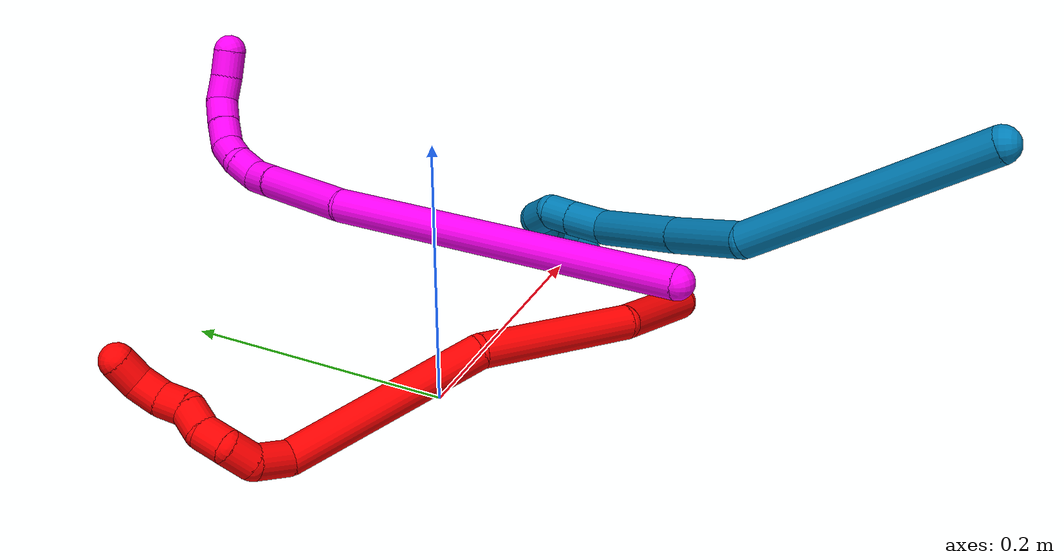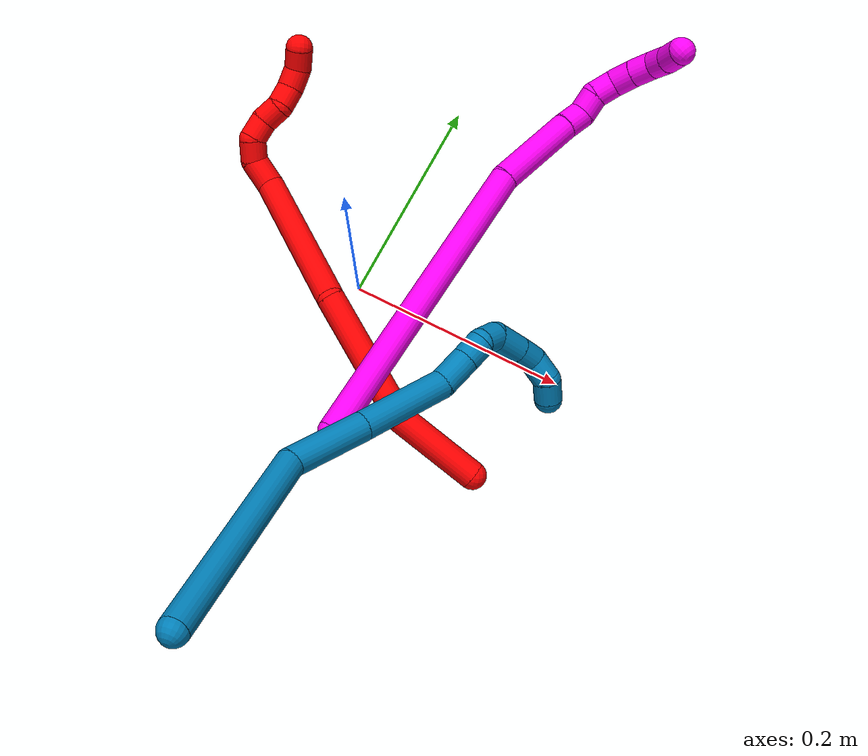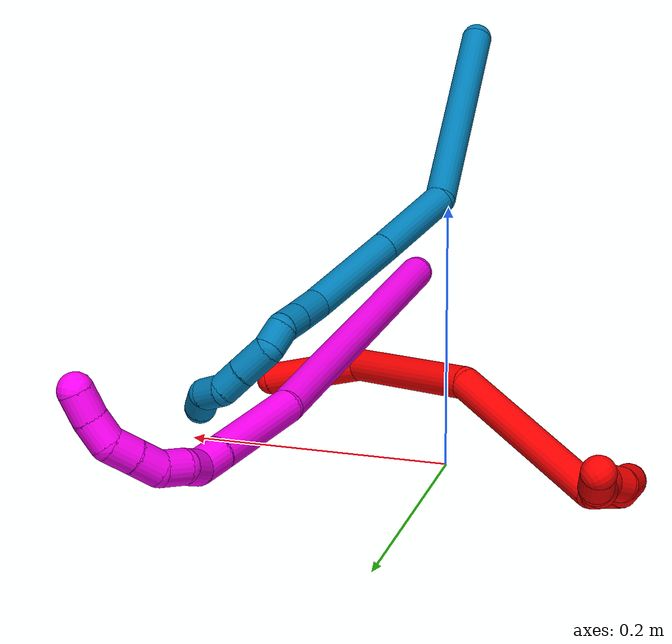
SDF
<sdf version="1.7">
 <world name="default">
  <model name="2">
   <static>0</static>
   <link name="2">
    <collision name="collision-cylinder-e_1_1_4">
     <pose>-0.015344 0.022057 0.030603 -0.624516 -0.386319 0.126118</pose>
     <geometry><cylinder><radius>0.0125</radius><length>0.08145</length></cylinder></geometry>
     <surface>
      <friction><ode><mu>1.16</mu><mu2>1.16</mu2><slip1>0</slip1><slip2>0</slip2></ode></friction>
      <contact><ode><kp>1e+06</kp><kd>1</kd><max_vel>0</max_vel><min_depth>0.001</min_depth></ode></contact>
     </surface>
    </collision>
    <visual name="visual-cylinder-e_1_1_4">
     <pose>-0.015344 0.022057 0.030603 -0.624516 -0.386319 0.126118</pose>
     <geometry><cylinder><radius>0.0125</radius><length>0.08145</length></cylinder></geometry>
     <material><ambient>1 0 0 1</ambient></material>
    </visual>
    <collision name="collision-cylinder-e_2_4_5">
     <pose>-0.060681 0.090892 0.085819 -1.08644 -0.516109 0.316084</pose>
     <geometry><cylinder><radius>0.0125</radius><length>0.121547</length></cylinder></geometry>
     <surface>
      <friction><ode><mu>1.16</mu><mu2>1.16</mu2><slip1>0</slip1><slip2>0</slip2></ode></friction>
      <contact><ode><kp>1e+06</kp><kd>1</kd><max_vel>0</max_vel><min_depth>0.001</min_depth></ode></contact>
     </surface>
    </collision>
    <visual name="visual-cylinder-e_2_4_5">
     <pose>-0.060681 0.090892 0.085819 -1.08644 -0.516109 0.316084</pose>
     <geometry><cylinder><radius>0.0125</radius><length>0.121547</length></cylinder></geometry>
     <material><ambient>1 0 0 1</ambient></material>
    </visual>
    <collision name="collision-cylinder-e_3_5_6">
     <pose>-0.148945 0.181978 0.120838 -1.3401 -0.907715 0.73766</pose>
     <geometry><cylinder><radius>0.0125</radius><length>0.147881</length></cylinder></geometry>
     <surface>
      <friction><ode><mu>1.16</mu><mu2>1.16</mu2><slip1>0</slip1><slip2>0</slip2></ode></friction>
      <contact><ode><kp>1e+06</kp><kd>1</kd><max_vel>0</max_vel><min_depth>0.001</min_depth></ode></contact>
     </surface>
    </collision>
    <visual name="visual-cylinder-e_3_5_6">
     <pose>-0.148945 0.181978 0.120838 -1.3401 -0.907715 0.73766</pose>
     <geometry><cylinder><radius>0.0125</radius><length>0.147881</length></cylinder></geometry>
     <material><ambient>1 0 0 1</ambient></material>
    </visual>
    <collision name="collision-cylinder-e_4_6_7">
     <pose>-0.212338 0.236897 0.138672 -0.960114 -0.376516 0.197748</pose>
     <geometry><cylinder><radius>0.0125</radius><length>0.027855</length></cylinder></geometry>
     <surface>
      <friction><ode><mu>1.16</mu><mu2>1.16</mu2><slip1>0</slip1><slip2>0</slip2></ode></friction>
      <contact><ode><kp>1e+06</kp><kd>1</kd><max_vel>0</max_vel><min_depth>0.001</min_depth></ode></contact>
     </surface>
    </collision>
    <visual name="visual-cylinder-e_4_6_7">
     <pose>-0.212338 0.236897 0.138672 -0.960114 -0.376516 0.197748</pose>
     <geometry><cylinder><radius>0.0125</radius><length>0.027855</length></cylinder></geometry>
     <material><ambient>1 0 0 1</ambient></material>
    </visual>
    <collision name="collision-cylinder-e_5_7_8">
     <pose>-0.215801 0.257533 0.148574 -1.32875 0.159224 -0.124796</pose>
     <geometry><cylinder><radius>0.0125</radius><length>0.020917</length></cylinder></geometry>
     <surface>
      <friction><ode><mu>1.16</mu><mu2>1.16</mu2><slip1>0</slip1><slip2>0</slip2></ode></friction>
      <contact><ode><kp>1e+06</kp><kd>1</kd><max_vel>0</max_vel><min_depth>0.001</min_depth></ode></contact>
     </surface>
    </collision>
    <visual name="visual-cylinder-e_5_7_8">
     <pose>-0.215801 0.257533 0.148574 -1.32875 0.159224 -0.124796</pose>
     <geometry><cylinder><radius>0.0125</radius><length>0.020917</length></cylinder></geometry>
     <material><ambient>1 0 0 1</ambient></material>
    </visual>
    <collision name="collision-cylinder-e_6_8_9">
     <pose>-0.213558 0.27657 0.146514 -2.03696 0.057851 -0.093825</pose>
     <geometry><cylinder><radius>0.0125</radius><length>0.020212</length></cylinder></geometry>
     <surface>
      <friction><ode><mu>1.16</mu><mu2>1.16</mu2><slip1>0</slip1><slip2>0</slip2></ode></friction>
      <contact><ode><kp>1e+06</kp><kd>1</kd><max_vel>0</max_vel><min_depth>0.001</min_depth></ode></contact>
     </surface>
    </collision>
    <visual name="visual-cylinder-e_6_8_9">
     <pose>-0.213558 0.27657 0.146514 -2.03696 0.057851 -0.093825</pose>
     <geometry><cylinder><radius>0.0125</radius><length>0.020212</length></cylinder></geometry>
     <material><ambient>1 0 0 1</ambient></material>
    </visual>
    <collision name="collision-cylinder-e_7_9_10">
     <pose>-0.208792 0.292844 0.136475 -2.21943 0.430245 -0.828716</pose>
     <geometry><cylinder><radius>0.0125</radius><length>0.020053</length></cylinder></geometry>
     <surface>
      <friction><ode><mu>1.16</mu><mu2>1.16</mu2><slip1>0</slip1><slip2>0</slip2></ode></friction>
      <contact><ode><kp>1e+06</kp><kd>1</kd><max_vel>0</max_vel><min_depth>0.001</min_depth></ode></contact>
     </surface>
    </collision>
    <visual name="visual-cylinder-e_7_9_10">
     <pose>-0.208792 0.292844 0.136475 -2.21943 0.430245 -0.828716</pose>
     <geometry><cylinder><radius>0.0125</radius><length>0.020053</length></cylinder></geometry>
     <material><ambient>1 0 0 1</ambient></material>
    </visual>
    <collision name="collision-cylinder-e_8_10_11">
     <pose>-0.205758 0.308909 0.126296 -2.05892 -0.114691 0.190386</pose>
     <geometry><cylinder><radius>0.0125</radius><length>0.020066</length></cylinder></geometry>
     <surface>
      <friction><ode><mu>1.16</mu><mu2>1.16</mu2><slip1>0</slip1><slip2>0</slip2></ode></friction>
      <contact><ode><kp>1e+06</kp><kd>1</kd><max_vel>0</max_vel><min_depth>0.001</min_depth></ode></contact>
     </surface>
    </collision>
    <visual name="visual-cylinder-e_8_10_11">
     <pose>-0.205758 0.308909 0.126296 -2.05892 -0.114691 0.190386</pose>
     <geometry><cylinder><radius>0.0125</radius><length>0.020066</length></cylinder></geometry>
     <material><ambient>1 0 0 1</ambient></material>
    </visual>
    <collision name="collision-cylinder-e_9_11_12">
     <pose>-0.205438 0.327322 0.119247 -1.813 0.147236 -0.187825</pose>
     <geometry><cylinder><radius>0.0125</radius><length>0.020013</length></cylinder></geometry>
     <surface>
      <friction><ode><mu>1.16</mu><mu2>1.16</mu2><slip1>0</slip1><slip2>0</slip2></ode></friction>
      <contact><ode><kp>1e+06</kp><kd>1</kd><max_vel>0</max_vel><min_depth>0.001</min_depth></ode></contact>
     </surface>
    </collision>
    <visual name="visual-cylinder-e_9_11_12">
     <pose>-0.205438 0.327322 0.119247 -1.813 0.147236 -0.187825</pose>
     <geometry><cylinder><radius>0.0125</radius><length>0.020013</length></cylinder></geometry>
     <material><ambient>1 0 0 1</ambient></material>
    </visual>
    <collision name="collision-cylinder-e_10_12_2">
     <pose>-0.200167 0.346009 0.118666 -1.37587 0.389971 -0.321823</pose>
     <geometry><cylinder><radius>0.0125</radius><length>0.020007</length></cylinder></geometry>
     <surface>
      <friction><ode><mu>1.16</mu><mu2>1.16</mu2><slip1>0</slip1><slip2>0</slip2></ode></friction>
      <contact><ode><kp>1e+06</kp><kd>1</kd><max_vel>0</max_vel><min_depth>0.001</min_depth></ode></contact>
     </surface>
    </collision>
    <visual name="visual-cylinder-e_10_12_2">
     <pose>-0.200167 0.346009 0.118666 -1.37587 0.389971 -0.321823</pose>
     <geometry><cylinder><radius>0.0125</radius><length>0.020007</length></cylinder></geometry>
     <material><ambient>1 0 0 1</ambient></material>
    </visual>
    <collision name="collision-sphere-2">
     <pose>-0.196364 0.355086 0.120458 0 -0 0</pose>
     <geometry><sphere><radius>0.0125</radius></sphere></geometry>
     <surface>
      <friction><ode><mu>1.16</mu><mu2>1.16</mu2><slip1>0</slip1><slip2>0</slip2></ode></friction>
      <contact><ode><kp>1e+06</kp><kd>1</kd><max_vel>0</max_vel><min_depth>0.001</min_depth></ode></contact>
     </surface>
    </collision>
    <visual name="visual-sphere-2">
     <pose>-0.196364 0.355086 0.120458 0 -0 0</pose>
     <geometry><sphere><radius>0.0125</radius></sphere></geometry>
     <material><ambient>1 0 0 1</ambient></material>
    </visual>
    <collision name="collision-sphere-12">
     <pose>-0.20397 0.336932 0.116873 0 -0 0</pose>
     <geometry><sphere><radius>0.0125</radius></sphere></geometry>
     <surface>
      <friction><ode><mu>1.16</mu><mu2>1.16</mu2><slip1>0</slip1><slip2>0</slip2></ode></friction>
      <contact><ode><kp>1e+06</kp><kd>1</kd><max_vel>0</max_vel><min_depth>0.001</min_depth></ode></contact>
     </surface>
    </collision>
    <visual name="visual-sphere-12">
     <pose>-0.20397 0.336932 0.116873 0 -0 0</pose>
     <geometry><sphere><radius>0.0125</radius></sphere></geometry>
     <material><ambient>1 0 0 1</ambient></material>
    </visual>
    <collision name="collision-sphere-11">
     <pose>-0.206906 0.317713 0.121622 0 -0 0</pose>
     <geometry><sphere><radius>0.0125</radius></sphere></geometry>
     <surface>
      <friction><ode><mu>1.16</mu><mu2>1.16</mu2><slip1>0</slip1><slip2>0</slip2></ode></friction>
      <contact><ode><kp>1e+06</kp><kd>1</kd><max_vel>0</max_vel><min_depth>0.001</min_depth></ode></contact>
     </surface>
    </collision>
    <visual name="visual-sphere-11">
     <pose>-0.206906 0.317713 0.121622 0 -0 0</pose>
     <geometry><sphere><radius>0.0125</radius></sphere></geometry>
     <material><ambient>1 0 0 1</ambient></material>
    </visual>
    <collision name="collision-sphere-10">
     <pose>-0.20461 0.300106 0.13097 0 -0 0</pose>
     <geometry><sphere><radius>0.0125</radius></sphere></geometry>
     <surface>
      <friction><ode><mu>1.16</mu><mu2>1.16</mu2><slip1>0</slip1><slip2>0</slip2></ode></friction>
      <contact><ode><kp>1e+06</kp><kd>1</kd><max_vel>0</max_vel><min_depth>0.001</min_depth></ode></contact>
     </surface>
    </collision>
    <visual name="visual-sphere-10">
     <pose>-0.20461 0.300106 0.13097 0 -0 0</pose>
     <geometry><sphere><radius>0.0125</radius></sphere></geometry>
     <material><ambient>1 0 0 1</ambient></material>
    </visual>
    <collision name="collision-sphere-9">
     <pose>-0.212974 0.285582 0.14198 0 -0 0</pose>
     <geometry><sphere><radius>0.0125</radius></sphere></geometry>
     <surface>
      <friction><ode><mu>1.16</mu><mu2>1.16</mu2><slip1>0</slip1><slip2>0</slip2></ode></friction>
      <contact><ode><kp>1e+06</kp><kd>1</kd><max_vel>0</max_vel><min_depth>0.001</min_depth></ode></contact>
     </surface>
    </collision>
    <visual name="visual-sphere-9">
     <pose>-0.212974 0.285582 0.14198 0 -0 0</pose>
     <geometry><sphere><radius>0.0125</radius></sphere></geometry>
     <material><ambient>1 0 0 1</ambient></material>
    </visual>
    <collision name="collision-sphere-4">
     <pose>-0.030689 0.044114 0.061206 0 -0 0</pose>
     <geometry><sphere><radius>0.0125</radius></sphere></geometry>
     <surface>
      <friction><ode><mu>1.16</mu><mu2>1.16</mu2><slip1>0</slip1><slip2>0</slip2></ode></friction>
      <contact><ode><kp>1e+06</kp><kd>1</kd><max_vel>0</max_vel><min_depth>0.001</min_depth></ode></contact>
     </surface>
    </collision>
    <visual name="visual-sphere-4">
     <pose>-0.030689 0.044114 0.061206 0 -0 0</pose>
     <geometry><sphere><radius>0.0125</radius></sphere></geometry>
     <material><ambient>1 0 0 1</ambient></material>
    </visual>
    <collision name="collision-sphere-1">
     <geometry><sphere><radius>0.0125</radius></sphere></geometry>
     <surface>
      <friction><ode><mu>1.16</mu><mu2>1.16</mu2><slip1>0</slip1><slip2>0</slip2></ode></friction>
      <contact><ode><kp>1e+06</kp><kd>1</kd><max_vel>0</max_vel><min_depth>0.001</min_depth></ode></contact>
     </surface>
    </collision>
    <visual name="visual-sphere-1">
     <geometry><sphere><radius>0.0125</radius></sphere></geometry>
     <material><ambient>1 0 0 1</ambient></material>
    </visual>
    <collision name="collision-sphere-8">
     <pose>-0.214142 0.267558 0.151049 0 -0 0</pose>
     <geometry><sphere><radius>0.0125</radius></sphere></geometry>
     <surface>
      <friction><ode><mu>1.16</mu><mu2>1.16</mu2><slip1>0</slip1><slip2>0</slip2></ode></friction>
      <contact><ode><kp>1e+06</kp><kd>1</kd><max_vel>0</max_vel><min_depth>0.001</min_depth></ode></contact>
     </surface>
    </collision>
    <visual name="visual-sphere-8">
     <pose>-0.214142 0.267558 0.151049 0 -0 0</pose>
     <geometry><sphere><radius>0.0125</radius></sphere></geometry>
     <material><ambient>1 0 0 1</ambient></material>
    </visual>
    <collision name="collision-sphere-5">
     <pose>-0.090672 0.13767 0.110431 0 -0 0</pose>
     <geometry><sphere><radius>0.0125</radius></sphere></geometry>
     <surface>
      <friction><ode><mu>1.16</mu><mu2>1.16</mu2><slip1>0</slip1><slip2>0</slip2></ode></friction>
      <contact><ode><kp>1e+06</kp><kd>1</kd><max_vel>0</max_vel><min_depth>0.001</min_depth></ode></contact>
     </surface>
    </collision>
    <visual name="visual-sphere-5">
     <pose>-0.090672 0.13767 0.110431 0 -0 0</pose>
     <geometry><sphere><radius>0.0125</radius></sphere></geometry>
     <material><ambient>1 0 0 1</ambient></material>
    </visual>
    <collision name="collision-sphere-6">
     <pose>-0.207217 0.226286 0.131245 0 -0 0</pose>
     <geometry><sphere><radius>0.0125</radius></sphere></geometry>
     <surface>
      <friction><ode><mu>1.16</mu><mu2>1.16</mu2><slip1>0</slip1><slip2>0</slip2></ode></friction>
      <contact><ode><kp>1e+06</kp><kd>1</kd><max_vel>0</max_vel><min_depth>0.001</min_depth></ode></contact>
     </surface>
    </collision>
    <visual name="visual-sphere-6">
     <pose>-0.207217 0.226286 0.131245 0 -0 0</pose>
     <geometry><sphere><radius>0.0125</radius></sphere></geometry>
     <material><ambient>1 0 0 1</ambient></material>
    </visual>
    <collision name="collision-sphere-7">
     <pose>-0.217459 0.247508 0.146099 0 -0 0</pose>
     <geometry><sphere><radius>0.0125</radius></sphere></geometry>
     <surface>
      <friction><ode><mu>1.16</mu><mu2>1.16</mu2><slip1>0</slip1><slip2>0</slip2></ode></friction>
      <contact><ode><kp>1e+06</kp><kd>1</kd><max_vel>0</max_vel><min_depth>0.001</min_depth></ode></contact>
     </surface>
    </collision>
    <visual name="visual-sphere-7">
     <pose>-0.217459 0.247508 0.146099 0 -0 0</pose>
     <geometry><sphere><radius>0.0125</radius></sphere></geometry>
     <material><ambient>1 0 0 1</ambient></material>
    </visual>
    <inertial>
     <pose>-0.123656 0.16575 0.101513 0 -0 0</pose>
     <mass>0.5</mass>
     <inertia><ixx>0.000453</ixx><ixy>0</ixy><ixz>0</ixz><iyy>0.000507</iyy><iyz>0</iyz><izz>0</izz></inertia>
    </inertial>
   </link>
   <pose>0.173168 -0.111286 0.011954 0.772658 -0.882716 -0.289664</pose>
  </model>
  <model name="9">
   <static>0</static>
   <link name="9">
    <collision name="collision-cylinder-e_1_1_4">
     <pose>0.029454 -0.010366 -0.087115 3.02316 0.32391 2.44543</pose>
     <geometry><cylinder><radius>0.0125</radius><length>0.185084</length></cylinder></geometry>
     <surface>
      <friction><ode><mu>1.16</mu><mu2>1.16</mu2><slip1>0</slip1><slip2>0</slip2></ode></friction>
      <contact><ode><kp>1e+06</kp><kd>1</kd><max_vel>0</max_vel><min_depth>0.001</min_depth></ode></contact>
     </surface>
    </collision>
    <visual name="visual-cylinder-e_1_1_4">
     <pose>0.029454 -0.010366 -0.087115 3.02316 0.32391 2.44543</pose>
     <geometry><cylinder><radius>0.0125</radius><length>0.185084</length></cylinder></geometry>
     <material><ambient>0 0.490196 0.709804 1</ambient></material>
    </visual>
    <collision name="collision-cylinder-e_2_4_5">
     <pose>0.073991 -0.007643 -0.203079 -2.71565 0.44436 -1.61448</pose>
     <geometry><cylinder><radius>0.0125</radius><length>0.070172</length></cylinder></geometry>
     <surface>
      <friction><ode><mu>1.16</mu><mu2>1.16</mu2><slip1>0</slip1><slip2>0</slip2></ode></friction>
      <contact><ode><kp>1e+06</kp><kd>1</kd><max_vel>0</max_vel><min_depth>0.001</min_depth></ode></contact>
     </surface>
    </collision>
    <visual name="visual-cylinder-e_2_4_5">
     <pose>0.073991 -0.007643 -0.203079 -2.71565 0.44436 -1.61448</pose>
     <geometry><cylinder><radius>0.0125</radius><length>0.070172</length></cylinder></geometry>
     <material><ambient>0 0.490196 0.709804 1</ambient></material>
    </visual>
    <collision name="collision-cylinder-e_3_5_6">
     <pose>0.10571 0.021418 -0.266461 -2.7084 0.412209 -1.51967</pose>
     <geometry><cylinder><radius>0.0125</radius><length>0.083053</length></cylinder></geometry>
     <surface>
      <friction><ode><mu>1.16</mu><mu2>1.16</mu2><slip1>0</slip1><slip2>0</slip2></ode></friction>
      <contact><ode><kp>1e+06</kp><kd>1</kd><max_vel>0</max_vel><min_depth>0.001</min_depth></ode></contact>
     </surface>
    </collision>
    <visual name="visual-cylinder-e_3_5_6">
     <pose>0.10571 0.021418 -0.266461 -2.7084 0.412209 -1.51967</pose>
     <geometry><cylinder><radius>0.0125</radius><length>0.083053</length></cylinder></geometry>
     <material><ambient>0 0.490196 0.709804 1</ambient></material>
    </visual>
    <collision name="collision-cylinder-e_4_6_7">
     <pose>0.12344 0.042782 -0.314769 -2.76842 0.073717 -0.385803</pose>
     <geometry><cylinder><radius>0.0125</radius><length>0.029666</length></cylinder></geometry>
     <surface>
      <friction><ode><mu>1.16</mu><mu2>1.16</mu2><slip1>0</slip1><slip2>0</slip2></ode></friction>
      <contact><ode><kp>1e+06</kp><kd>1</kd><max_vel>0</max_vel><min_depth>0.001</min_depth></ode></contact>
     </surface>
    </collision>
    <visual name="visual-cylinder-e_4_6_7">
     <pose>0.12344 0.042782 -0.314769 -2.76842 0.073717 -0.385803</pose>
     <geometry><cylinder><radius>0.0125</radius><length>0.029666</length></cylinder></geometry>
     <material><ambient>0 0.490196 0.709804 1</ambient></material>
    </visual>
    <collision name="collision-cylinder-e_5_7_8">
     <pose>0.124972 0.052092 -0.338214 -2.75676 0.042126 -0.215419</pose>
     <geometry><cylinder><radius>0.0125</radius><length>0.020884</length></cylinder></geometry>
     <surface>
      <friction><ode><mu>1.16</mu><mu2>1.16</mu2><slip1>0</slip1><slip2>0</slip2></ode></friction>
      <contact><ode><kp>1e+06</kp><kd>1</kd><max_vel>0</max_vel><min_depth>0.001</min_depth></ode></contact>
     </surface>
    </collision>
    <visual name="visual-cylinder-e_5_7_8">
     <pose>0.124972 0.052092 -0.338214 -2.75676 0.042126 -0.215419</pose>
     <geometry><cylinder><radius>0.0125</radius><length>0.020884</length></cylinder></geometry>
     <material><ambient>0 0.490196 0.709804 1</ambient></material>
    </visual>
    <collision name="collision-cylinder-e_6_8_9">
     <pose>0.131275 0.057316 -0.356049 -2.98281 0.616767 -2.65209</pose>
     <geometry><cylinder><radius>0.0125</radius><length>0.020272</length></cylinder></geometry>
     <surface>
      <friction><ode><mu>1.16</mu><mu2>1.16</mu2><slip1>0</slip1><slip2>0</slip2></ode></friction>
      <contact><ode><kp>1e+06</kp><kd>1</kd><max_vel>0</max_vel><min_depth>0.001</min_depth></ode></contact>
     </surface>
    </collision>
    <visual name="visual-cylinder-e_6_8_9">
     <pose>0.131275 0.057316 -0.356049 -2.98281 0.616767 -2.65209</pose>
     <geometry><cylinder><radius>0.0125</radius><length>0.020272</length></cylinder></geometry>
     <material><ambient>0 0.490196 0.709804 1</ambient></material>
    </visual>
    <collision name="collision-cylinder-e_7_9_10">
     <pose>0.150402 0.063094 -0.367307 -2.1762 1.1818 -1.81531</pose>
     <geometry><cylinder><radius>0.0125</radius><length>0.028671</length></cylinder></geometry>
     <surface>
      <friction><ode><mu>1.16</mu><mu2>1.16</mu2><slip1>0</slip1><slip2>0</slip2></ode></friction>
      <contact><ode><kp>1e+06</kp><kd>1</kd><max_vel>0</max_vel><min_depth>0.001</min_depth></ode></contact>
     </surface>
    </collision>
    <visual name="visual-cylinder-e_7_9_10">
     <pose>0.150402 0.063094 -0.367307 -2.1762 1.1818 -1.81531</pose>
     <geometry><cylinder><radius>0.0125</radius><length>0.028671</length></cylinder></geometry>
     <material><ambient>0 0.490196 0.709804 1</ambient></material>
    </visual>
    <collision name="collision-cylinder-e_8_10_11">
     <pose>0.173298 0.070597 -0.372358 -2.14383 1.2123 -1.80932</pose>
     <geometry><cylinder><radius>0.0125</radius><length>0.020571</length></cylinder></geometry>
     <surface>
      <friction><ode><mu>1.16</mu><mu2>1.16</mu2><slip1>0</slip1><slip2>0</slip2></ode></friction>
      <contact><ode><kp>1e+06</kp><kd>1</kd><max_vel>0</max_vel><min_depth>0.001</min_depth></ode></contact>
     </surface>
    </collision>
    <visual name="visual-cylinder-e_8_10_11">
     <pose>0.173298 0.070597 -0.372358 -2.14383 1.2123 -1.80932</pose>
     <geometry><cylinder><radius>0.0125</radius><length>0.020571</length></cylinder></geometry>
     <material><ambient>0 0.490196 0.709804 1</ambient></material>
    </visual>
    <collision name="collision-cylinder-e_9_11_12">
     <pose>0.19152 0.078534 -0.370452 -0.903772 0.942365 -0.484835</pose>
     <geometry><cylinder><radius>0.0125</radius><length>0.021238</length></cylinder></geometry>
     <surface>
      <friction><ode><mu>1.16</mu><mu2>1.16</mu2><slip1>0</slip1><slip2>0</slip2></ode></friction>
      <contact><ode><kp>1e+06</kp><kd>1</kd><max_vel>0</max_vel><min_depth>0.001</min_depth></ode></contact>
     </surface>
    </collision>
    <visual name="visual-cylinder-e_9_11_12">
     <pose>0.19152 0.078534 -0.370452 -0.903772 0.942365 -0.484835</pose>
     <geometry><cylinder><radius>0.0125</radius><length>0.021238</length></cylinder></geometry>
     <material><ambient>0 0.490196 0.709804 1</ambient></material>
    </visual>
    <collision name="collision-cylinder-e_10_12_2">
     <pose>0.209392 0.081894 -0.36267 0.375293 1.14466 0.243455</pose>
     <geometry><cylinder><radius>0.0125</radius><length>0.020387</length></cylinder></geometry>
     <surface>
      <friction><ode><mu>1.16</mu><mu2>1.16</mu2><slip1>0</slip1><slip2>0</slip2></ode></friction>
      <contact><ode><kp>1e+06</kp><kd>1</kd><max_vel>0</max_vel><min_depth>0.001</min_depth></ode></contact>
     </surface>
    </collision>
    <visual name="visual-cylinder-e_10_12_2">
     <pose>0.209392 0.081894 -0.36267 0.375293 1.14466 0.243455</pose>
     <geometry><cylinder><radius>0.0125</radius><length>0.020387</length></cylinder></geometry>
     <material><ambient>0 0.490196 0.709804 1</ambient></material>
    </visual>
    <collision name="collision-sphere-2">
     <pose>0.218674 0.080349 -0.35875 0 -0 0</pose>
     <geometry><sphere><radius>0.0125</radius></sphere></geometry>
     <surface>
      <friction><ode><mu>1.16</mu><mu2>1.16</mu2><slip1>0</slip1><slip2>0</slip2></ode></friction>
      <contact><ode><kp>1e+06</kp><kd>1</kd><max_vel>0</max_vel><min_depth>0.001</min_depth></ode></contact>
     </surface>
    </collision>
    <visual name="visual-sphere-2">
     <pose>0.218674 0.080349 -0.35875 0 -0 0</pose>
     <geometry><sphere><radius>0.0125</radius></sphere></geometry>
     <material><ambient>0 0.490196 0.709804 1</ambient></material>
    </visual>
    <collision name="collision-sphere-12">
     <pose>0.20011 0.083438 -0.36659 0 -0 0</pose>
     <geometry><sphere><radius>0.0125</radius></sphere></geometry>
     <surface>
      <friction><ode><mu>1.16</mu><mu2>1.16</mu2><slip1>0</slip1><slip2>0</slip2></ode></friction>
      <contact><ode><kp>1e+06</kp><kd>1</kd><max_vel>0</max_vel><min_depth>0.001</min_depth></ode></contact>
     </surface>
    </collision>
    <visual name="visual-sphere-12">
     <pose>0.20011 0.083438 -0.36659 0 -0 0</pose>
     <geometry><sphere><radius>0.0125</radius></sphere></geometry>
     <material><ambient>0 0.490196 0.709804 1</ambient></material>
    </visual>
    <collision name="collision-sphere-11">
     <pose>0.182929 0.073629 -0.374314 0 -0 0</pose>
     <geometry><sphere><radius>0.0125</radius></sphere></geometry>
     <surface>
      <friction><ode><mu>1.16</mu><mu2>1.16</mu2><slip1>0</slip1><slip2>0</slip2></ode></friction>
      <contact><ode><kp>1e+06</kp><kd>1</kd><max_vel>0</max_vel><min_depth>0.001</min_depth></ode></contact>
     </surface>
    </collision>
    <visual name="visual-sphere-11">
     <pose>0.182929 0.073629 -0.374314 0 -0 0</pose>
     <geometry><sphere><radius>0.0125</radius></sphere></geometry>
     <material><ambient>0 0.490196 0.709804 1</ambient></material>
    </visual>
    <collision name="collision-sphere-10">
     <pose>0.163666 0.067564 -0.370401 0 -0 0</pose>
     <geometry><sphere><radius>0.0125</radius></sphere></geometry>
     <surface>
      <friction><ode><mu>1.16</mu><mu2>1.16</mu2><slip1>0</slip1><slip2>0</slip2></ode></friction>
      <contact><ode><kp>1e+06</kp><kd>1</kd><max_vel>0</max_vel><min_depth>0.001</min_depth></ode></contact>
     </surface>
    </collision>
    <visual name="visual-sphere-10">
     <pose>0.163666 0.067564 -0.370401 0 -0 0</pose>
     <geometry><sphere><radius>0.0125</radius></sphere></geometry>
     <material><ambient>0 0.490196 0.709804 1</ambient></material>
    </visual>
    <collision name="collision-sphere-9">
     <pose>0.137137 0.058623 -0.364213 0 -0 0</pose>
     <geometry><sphere><radius>0.0125</radius></sphere></geometry>
     <surface>
      <friction><ode><mu>1.16</mu><mu2>1.16</mu2><slip1>0</slip1><slip2>0</slip2></ode></friction>
      <contact><ode><kp>1e+06</kp><kd>1</kd><max_vel>0</max_vel><min_depth>0.001</min_depth></ode></contact>
     </surface>
    </collision>
    <visual name="visual-sphere-9">
     <pose>0.137137 0.058623 -0.364213 0 -0 0</pose>
     <geometry><sphere><radius>0.0125</radius></sphere></geometry>
     <material><ambient>0 0.490196 0.709804 1</ambient></material>
    </visual>
    <collision name="collision-sphere-4">
     <pose>0.058908 -0.020732 -0.174231 0 -0 0</pose>
     <geometry><sphere><radius>0.0125</radius></sphere></geometry>
     <surface>
      <friction><ode><mu>1.16</mu><mu2>1.16</mu2><slip1>0</slip1><slip2>0</slip2></ode></friction>
      <contact><ode><kp>1e+06</kp><kd>1</kd><max_vel>0</max_vel><min_depth>0.001</min_depth></ode></contact>
     </surface>
    </collision>
    <visual name="visual-sphere-4">
     <pose>0.058908 -0.020732 -0.174231 0 -0 0</pose>
     <geometry><sphere><radius>0.0125</radius></sphere></geometry>
     <material><ambient>0 0.490196 0.709804 1</ambient></material>
    </visual>
    <collision name="collision-sphere-1">
     <geometry><sphere><radius>0.0125</radius></sphere></geometry>
     <surface>
      <friction><ode><mu>1.16</mu><mu2>1.16</mu2><slip1>0</slip1><slip2>0</slip2></ode></friction>
      <contact><ode><kp>1e+06</kp><kd>1</kd><max_vel>0</max_vel><min_depth>0.001</min_depth></ode></contact>
     </surface>
    </collision>
    <visual name="visual-sphere-1">
     <geometry><sphere><radius>0.0125</radius></sphere></geometry>
     <material><ambient>0 0.490196 0.709804 1</ambient></material>
    </visual>
    <collision name="collision-sphere-8">
     <pose>0.125412 0.056008 -0.347884 0 -0 0</pose>
     <geometry><sphere><radius>0.0125</radius></sphere></geometry>
     <surface>
      <friction><ode><mu>1.16</mu><mu2>1.16</mu2><slip1>0</slip1><slip2>0</slip2></ode></friction>
      <contact><ode><kp>1e+06</kp><kd>1</kd><max_vel>0</max_vel><min_depth>0.001</min_depth></ode></contact>
     </surface>
    </collision>
    <visual name="visual-sphere-8">
     <pose>0.125412 0.056008 -0.347884 0 -0 0</pose>
     <geometry><sphere><radius>0.0125</radius></sphere></geometry>
     <material><ambient>0 0.490196 0.709804 1</ambient></material>
    </visual>
    <collision name="collision-sphere-5">
     <pose>0.089073 0.005446 -0.231927 0 -0 0</pose>
     <geometry><sphere><radius>0.0125</radius></sphere></geometry>
     <surface>
      <friction><ode><mu>1.16</mu><mu2>1.16</mu2><slip1>0</slip1><slip2>0</slip2></ode></friction>
      <contact><ode><kp>1e+06</kp><kd>1</kd><max_vel>0</max_vel><min_depth>0.001</min_depth></ode></contact>
     </surface>
    </collision>
    <visual name="visual-sphere-5">
     <pose>0.089073 0.005446 -0.231927 0 -0 0</pose>
     <geometry><sphere><radius>0.0125</radius></sphere></geometry>
     <material><ambient>0 0.490196 0.709804 1</ambient></material>
    </visual>
    <collision name="collision-sphere-6">
     <pose>0.122347 0.037389 -0.300995 0 -0 0</pose>
     <geometry><sphere><radius>0.0125</radius></sphere></geometry>
     <surface>
      <friction><ode><mu>1.16</mu><mu2>1.16</mu2><slip1>0</slip1><slip2>0</slip2></ode></friction>
      <contact><ode><kp>1e+06</kp><kd>1</kd><max_vel>0</max_vel><min_depth>0.001</min_depth></ode></contact>
     </surface>
    </collision>
    <visual name="visual-sphere-6">
     <pose>0.122347 0.037389 -0.300995 0 -0 0</pose>
     <geometry><sphere><radius>0.0125</radius></sphere></geometry>
     <material><ambient>0 0.490196 0.709804 1</ambient></material>
    </visual>
    <collision name="collision-sphere-7">
     <pose>0.124532 0.048175 -0.328544 0 -0 0</pose>
     <geometry><sphere><radius>0.0125</radius></sphere></geometry>
     <surface>
      <friction><ode><mu>1.16</mu><mu2>1.16</mu2><slip1>0</slip1><slip2>0</slip2></ode></friction>
      <contact><ode><kp>1e+06</kp><kd>1</kd><max_vel>0</max_vel><min_depth>0.001</min_depth></ode></contact>
     </surface>
    </collision>
    <visual name="visual-sphere-7">
     <pose>0.124532 0.048175 -0.328544 0 -0 0</pose>
     <geometry><sphere><radius>0.0125</radius></sphere></geometry>
     <material><ambient>0 0.490196 0.709804 1</ambient></material>
    </visual>
    <inertial>
     <pose>0.08914 0.018883 -0.219153 0 -0 0</pose>
     <mass>0.5</mass>
     <inertia>
      <ixx>-0.00012</ixx>
      <ixy>0</ixy>
      <ixz>0</ixz>
      <iyy>0.000691</iyy>
      <iyz>0</iyz>
      <izz>-0.000216</izz>
     </inertia>
    </inertial>
   </link>
   <pose>0.065399 -0.352973 0.249108 1.1107 1.01935 -0.277211</pose>
  </model>
  <model name="10">
   <static>0</static>
   <link name="10">
    <collision name="collision-cylinder-e_1_1_4">
     <pose>0.023046 0.128901 -0.044657 -1.9043 0.167359 -0.234567</pose>
     <geometry><cylinder><radius>0.0125</radius><length>0.2767</length></cylinder></geometry>
     <surface>
      <friction><ode><mu>1.16</mu><mu2>1.16</mu2><slip1>0</slip1><slip2>0</slip2></ode></friction>
      <contact><ode><kp>1e+06</kp><kd>1</kd><max_vel>0</max_vel><min_depth>0.001</min_depth></ode></contact>
     </surface>
    </collision>
    <visual name="visual-cylinder-e_1_1_4">
     <pose>0.023046 0.128901 -0.044657 -1.9043 0.167359 -0.234567</pose>
     <geometry><cylinder><radius>0.0125</radius><length>0.2767</length></cylinder></geometry>
     <material><ambient>1 0 0.964706 1</ambient></material>
    </visual>
    <collision name="collision-cylinder-e_2_4_5">
     <pose>0.054266 0.296168 -0.092972 -1.66587 0.208996 -0.229699</pose>
     <geometry><cylinder><radius>0.0125</radius><length>0.078795</length></cylinder></geometry>
     <surface>
      <friction><ode><mu>1.16</mu><mu2>1.16</mu2><slip1>0</slip1><slip2>0</slip2></ode></friction>
      <contact><ode><kp>1e+06</kp><kd>1</kd><max_vel>0</max_vel><min_depth>0.001</min_depth></ode></contact>
     </surface>
    </collision>
    <visual name="visual-cylinder-e_2_4_5">
     <pose>0.054266 0.296168 -0.092972 -1.66587 0.208996 -0.229699</pose>
     <geometry><cylinder><radius>0.0125</radius><length>0.078795</length></cylinder></geometry>
     <material><ambient>1 0 0.964706 1</ambient></material>
    </visual>
    <collision name="collision-cylinder-e_3_5_6">
     <pose>0.065124 0.345288 -0.096934 -1.59903 0.244436 -0.251364</pose>
     <geometry><cylinder><radius>0.0125</radius><length>0.022176</length></cylinder></geometry>
     <surface>
      <friction><ode><mu>1.16</mu><mu2>1.16</mu2><slip1>0</slip1><slip2>0</slip2></ode></friction>
      <contact><ode><kp>1e+06</kp><kd>1</kd><max_vel>0</max_vel><min_depth>0.001</min_depth></ode></contact>
     </surface>
    </collision>
    <visual name="visual-cylinder-e_3_5_6">
     <pose>0.065124 0.345288 -0.096934 -1.59903 0.244436 -0.251364</pose>
     <geometry><cylinder><radius>0.0125</radius><length>0.022176</length></cylinder></geometry>
     <material><ambient>1 0 0.964706 1</ambient></material>
    </visual>
    <collision name="collision-cylinder-e_4_6_7">
     <pose>0.064966 0.365447 -0.099757 -1.83249 -0.283908 0.368244</pose>
     <geometry><cylinder><radius>0.0125</radius><length>0.020286</length></cylinder></geometry>
     <surface>
      <friction><ode><mu>1.16</mu><mu2>1.16</mu2><slip1>0</slip1><slip2>0</slip2></ode></friction>
      <contact><ode><kp>1e+06</kp><kd>1</kd><max_vel>0</max_vel><min_depth>0.001</min_depth></ode></contact>
     </surface>
    </collision>
    <visual name="visual-cylinder-e_4_6_7">
     <pose>0.064966 0.365447 -0.099757 -1.83249 -0.283908 0.368244</pose>
     <geometry><cylinder><radius>0.0125</radius><length>0.020286</length></cylinder></geometry>
     <material><ambient>1 0 0.964706 1</ambient></material>
    </visual>
    <collision name="collision-cylinder-e_5_7_8">
     <pose>0.06103 0.384857 -0.100683 -1.41288 -0.107715 0.091943</pose>
     <geometry><cylinder><radius>0.0125</radius><length>0.020379</length></cylinder></geometry>
     <surface>
      <friction><ode><mu>1.16</mu><mu2>1.16</mu2><slip1>0</slip1><slip2>0</slip2></ode></friction>
      <contact><ode><kp>1e+06</kp><kd>1</kd><max_vel>0</max_vel><min_depth>0.001</min_depth></ode></contact>
     </surface>
    </collision>
    <visual name="visual-cylinder-e_5_7_8">
     <pose>0.06103 0.384857 -0.100683 -1.41288 -0.107715 0.091943</pose>
     <geometry><cylinder><radius>0.0125</radius><length>0.020379</length></cylinder></geometry>
     <material><ambient>1 0 0.964706 1</ambient></material>
    </visual>
    <collision name="collision-cylinder-e_6_8_9">
     <pose>0.054458 0.40291 -0.095774 -1.18001 -0.561571 0.381515</pose>
     <geometry><cylinder><radius>0.0125</radius><length>0.020569</length></cylinder></geometry>
     <surface>
      <friction><ode><mu>1.16</mu><mu2>1.16</mu2><slip1>0</slip1><slip2>0</slip2></ode></friction>
      <contact><ode><kp>1e+06</kp><kd>1</kd><max_vel>0</max_vel><min_depth>0.001</min_depth></ode></contact>
     </surface>
    </collision>
    <visual name="visual-cylinder-e_6_8_9">
     <pose>0.054458 0.40291 -0.095774 -1.18001 -0.561571 0.381515</pose>
     <geometry><cylinder><radius>0.0125</radius><length>0.020569</length></cylinder></geometry>
     <material><ambient>1 0 0.964706 1</ambient></material>
    </visual>
    <collision name="collision-cylinder-e_7_9_10">
     <pose>0.043713 0.418664 -0.088553 -1.10175 -0.547617 0.341708</pose>
     <geometry><cylinder><radius>0.0125</radius><length>0.020237</length></cylinder></geometry>
     <surface>
      <friction><ode><mu>1.16</mu><mu2>1.16</mu2><slip1>0</slip1><slip2>0</slip2></ode></friction>
      <contact><ode><kp>1e+06</kp><kd>1</kd><max_vel>0</max_vel><min_depth>0.001</min_depth></ode></contact>
     </surface>
    </collision>
    <visual name="visual-cylinder-e_7_9_10">
     <pose>0.043713 0.418664 -0.088553 -1.10175 -0.547617 0.341708</pose>
     <geometry><cylinder><radius>0.0125</radius><length>0.020237</length></cylinder></geometry>
     <material><ambient>1 0 0.964706 1</ambient></material>
    </visual>
    <collision name="collision-cylinder-e_8_10_11">
     <pose>0.030055 0.429969 -0.080461 -0.7101 -0.988772 0.39451</pose>
     <geometry><cylinder><radius>0.0125</radius><length>0.020087</length></cylinder></geometry>
     <surface>
      <friction><ode><mu>1.16</mu><mu2>1.16</mu2><slip1>0</slip1><slip2>0</slip2></ode></friction>
      <contact><ode><kp>1e+06</kp><kd>1</kd><max_vel>0</max_vel><min_depth>0.001</min_depth></ode></contact>
     </surface>
    </collision>
    <visual name="visual-cylinder-e_8_10_11">
     <pose>0.030055 0.429969 -0.080461 -0.7101 -0.988772 0.39451</pose>
     <geometry><cylinder><radius>0.0125</radius><length>0.020087</length></cylinder></geometry>
     <material><ambient>1 0 0.964706 1</ambient></material>
    </visual>
    <collision name="collision-cylinder-e_9_11_2">
     <pose>0.01225 0.436632 -0.073138 -0.77356 -1.13492 0.508001</pose>
     <geometry><cylinder><radius>0.0125</radius><length>0.020771</length></cylinder></geometry>
     <surface>
      <friction><ode><mu>1.16</mu><mu2>1.16</mu2><slip1>0</slip1><slip2>0</slip2></ode></friction>
      <contact><ode><kp>1e+06</kp><kd>1</kd><max_vel>0</max_vel><min_depth>0.001</min_depth></ode></contact>
     </surface>
    </collision>
    <visual name="visual-cylinder-e_9_11_2">
     <pose>0.01225 0.436632 -0.073138 -0.77356 -1.13492 0.508001</pose>
     <geometry><cylinder><radius>0.0125</radius><length>0.020771</length></cylinder></geometry>
     <material><ambient>1 0 0.964706 1</ambient></material>
    </visual>
    <collision name="collision-sphere-2">
     <pose>0.002836 0.439696 -0.070001 0 -0 0</pose>
     <geometry><sphere><radius>0.0125</radius></sphere></geometry>
     <surface>
      <friction><ode><mu>1.16</mu><mu2>1.16</mu2><slip1>0</slip1><slip2>0</slip2></ode></friction>
      <contact><ode><kp>1e+06</kp><kd>1</kd><max_vel>0</max_vel><min_depth>0.001</min_depth></ode></contact>
     </surface>
    </collision>
    <visual name="visual-sphere-2">
     <pose>0.002836 0.439696 -0.070001 0 -0 0</pose>
     <geometry><sphere><radius>0.0125</radius></sphere></geometry>
     <material><ambient>1 0 0.964706 1</ambient></material>
    </visual>
    <collision name="collision-sphere-11">
     <pose>0.021665 0.433569 -0.076275 0 -0 0</pose>
     <geometry><sphere><radius>0.0125</radius></sphere></geometry>
     <surface>
      <friction><ode><mu>1.16</mu><mu2>1.16</mu2><slip1>0</slip1><slip2>0</slip2></ode></friction>
      <contact><ode><kp>1e+06</kp><kd>1</kd><max_vel>0</max_vel><min_depth>0.001</min_depth></ode></contact>
     </surface>
    </collision>
    <visual name="visual-sphere-11">
     <pose>0.021665 0.433569 -0.076275 0 -0 0</pose>
     <geometry><sphere><radius>0.0125</radius></sphere></geometry>
     <material><ambient>1 0 0.964706 1</ambient></material>
    </visual>
    <collision name="collision-sphere-10">
     <pose>0.038445 0.42637 -0.084648 0 -0 0</pose>
     <geometry><sphere><radius>0.0125</radius></sphere></geometry>
     <surface>
      <friction><ode><mu>1.16</mu><mu2>1.16</mu2><slip1>0</slip1><slip2>0</slip2></ode></friction>
      <contact><ode><kp>1e+06</kp><kd>1</kd><max_vel>0</max_vel><min_depth>0.001</min_depth></ode></contact>
     </surface>
    </collision>
    <visual name="visual-sphere-10">
     <pose>0.038445 0.42637 -0.084648 0 -0 0</pose>
     <geometry><sphere><radius>0.0125</radius></sphere></geometry>
     <material><ambient>1 0 0.964706 1</ambient></material>
    </visual>
    <collision name="collision-sphere-9">
     <pose>0.048981 0.410958 -0.092458 0 -0 0</pose>
     <geometry><sphere><radius>0.0125</radius></sphere></geometry>
     <surface>
      <friction><ode><mu>1.16</mu><mu2>1.16</mu2><slip1>0</slip1><slip2>0</slip2></ode></friction>
      <contact><ode><kp>1e+06</kp><kd>1</kd><max_vel>0</max_vel><min_depth>0.001</min_depth></ode></contact>
     </surface>
    </collision>
    <visual name="visual-sphere-9">
     <pose>0.048981 0.410958 -0.092458 0 -0 0</pose>
     <geometry><sphere><radius>0.0125</radius></sphere></geometry>
     <material><ambient>1 0 0.964706 1</ambient></material>
    </visual>
    <collision name="collision-sphere-4">
     <pose>0.046092 0.257801 -0.089313 0 -0 0</pose>
     <geometry><sphere><radius>0.0125</radius></sphere></geometry>
     <surface>
      <friction><ode><mu>1.16</mu><mu2>1.16</mu2><slip1>0</slip1><slip2>0</slip2></ode></friction>
      <contact><ode><kp>1e+06</kp><kd>1</kd><max_vel>0</max_vel><min_depth>0.001</min_depth></ode></contact>
     </surface>
    </collision>
    <visual name="visual-sphere-4">
     <pose>0.046092 0.257801 -0.089313 0 -0 0</pose>
     <geometry><sphere><radius>0.0125</radius></sphere></geometry>
     <material><ambient>1 0 0.964706 1</ambient></material>
    </visual>
    <collision name="collision-sphere-1">
     <geometry><sphere><radius>0.0125</radius></sphere></geometry>
     <surface>
      <friction><ode><mu>1.16</mu><mu2>1.16</mu2><slip1>0</slip1><slip2>0</slip2></ode></friction>
      <contact><ode><kp>1e+06</kp><kd>1</kd><max_vel>0</max_vel><min_depth>0.001</min_depth></ode></contact>
     </surface>
    </collision>
    <visual name="visual-sphere-1">
     <geometry><sphere><radius>0.0125</radius></sphere></geometry>
     <material><ambient>1 0 0.964706 1</ambient></material>
    </visual>
    <collision name="collision-sphere-8">
     <pose>0.059934 0.394861 -0.09909 0 -0 0</pose>
     <geometry><sphere><radius>0.0125</radius></sphere></geometry>
     <surface>
      <friction><ode><mu>1.16</mu><mu2>1.16</mu2><slip1>0</slip1><slip2>0</slip2></ode></friction>
      <contact><ode><kp>1e+06</kp><kd>1</kd><max_vel>0</max_vel><min_depth>0.001</min_depth></ode></contact>
     </surface>
    </collision>
    <visual name="visual-sphere-8">
     <pose>0.059934 0.394861 -0.09909 0 -0 0</pose>
     <geometry><sphere><radius>0.0125</radius></sphere></geometry>
     <material><ambient>1 0 0.964706 1</ambient></material>
    </visual>
    <collision name="collision-sphere-5">
     <pose>0.062441 0.334534 -0.096631 0 -0 0</pose>
     <geometry><sphere><radius>0.0125</radius></sphere></geometry>
     <surface>
      <friction><ode><mu>1.16</mu><mu2>1.16</mu2><slip1>0</slip1><slip2>0</slip2></ode></friction>
      <contact><ode><kp>1e+06</kp><kd>1</kd><max_vel>0</max_vel><min_depth>0.001</min_depth></ode></contact>
     </surface>
    </collision>
    <visual name="visual-sphere-5">
     <pose>0.062441 0.334534 -0.096631 0 -0 0</pose>
     <geometry><sphere><radius>0.0125</radius></sphere></geometry>
     <material><ambient>1 0 0.964706 1</ambient></material>
    </visual>
    <collision name="collision-sphere-6">
     <pose>0.067807 0.356042 -0.097238 0 -0 0</pose>
     <geometry><sphere><radius>0.0125</radius></sphere></geometry>
     <surface>
      <friction><ode><mu>1.16</mu><mu2>1.16</mu2><slip1>0</slip1><slip2>0</slip2></ode></friction>
      <contact><ode><kp>1e+06</kp><kd>1</kd><max_vel>0</max_vel><min_depth>0.001</min_depth></ode></contact>
     </surface>
    </collision>
    <visual name="visual-sphere-6">
     <pose>0.067807 0.356042 -0.097238 0 -0 0</pose>
     <geometry><sphere><radius>0.0125</radius></sphere></geometry>
     <material><ambient>1 0 0.964706 1</ambient></material>
    </visual>
    <collision name="collision-sphere-7">
     <pose>0.062125 0.374853 -0.102276 0 -0 0</pose>
     <geometry><sphere><radius>0.0125</radius></sphere></geometry>
     <surface>
      <friction><ode><mu>1.16</mu><mu2>1.16</mu2><slip1>0</slip1><slip2>0</slip2></ode></friction>
      <contact><ode><kp>1e+06</kp><kd>1</kd><max_vel>0</max_vel><min_depth>0.001</min_depth></ode></contact>
     </surface>
    </collision>
    <visual name="visual-sphere-7">
     <pose>0.062125 0.374853 -0.102276 0 -0 0</pose>
     <geometry><sphere><radius>0.0125</radius></sphere></geometry>
     <material><ambient>1 0 0.964706 1</ambient></material>
    </visual>
    <inertial>
     <pose>0.035043 0.232766 -0.065609 0 -0 0</pose>
     <mass>0.5</mass>
     <inertia>
      <ixx>0.001339</ixx>
      <ixy>0</ixy>
      <ixz>0</ixz>
      <iyy>-0.000879</iyy>
      <iyz>0</iyz>
      <izz>-0.002012</izz>
     </inertia>
    </inertial>
   </link>
   <pose>0.063812 -0.15044 0.099911 2.34228 1.45416 1.93049</pose>
  </model>
 </world>
</sdf>
